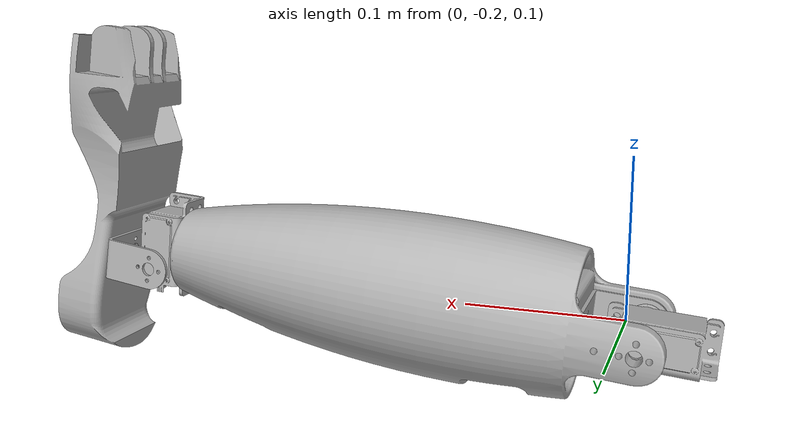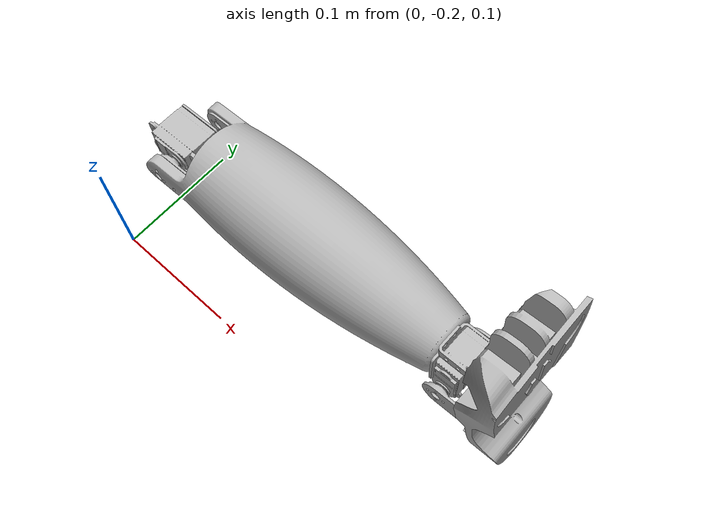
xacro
<?xml version="1.0" ?>
<robot name="right_leg" xmlns:xacro="http://www.ros.org/wiki/xacro">

<xacro:include filename="$(find right_leg_description)/urdf/materials.xacro" />
<xacro:include filename="$(find right_leg_description)/urdf/right_leg.trans" />
<xacro:include filename="$(find right_leg_description)/urdf/right_leg.gazebo" />
<link name="base_link">
  <inertial>
    <origin xyz="-0.026613185343482847 -0.11239707441235805 0.11736855909598289" rpy="0 0 0"/>
    <mass value="0.28416481806119953"/>
    <inertia ixx="4.7e-05" iyy="5.8e-05" izz="8e-05" ixy="0.0" iyz="0.0" ixz="-3e-06"/>
  </inertial>
  <visual>
    <origin xyz="0 0 0" rpy="0 0 0"/>
    <geometry>
      <mesh filename="package://right_leg_description/meshes/base_link.stl" scale="0.001 0.001 0.001"/>
    </geometry>
    <material name="silver"/>
  </visual>
  <collision>
    <origin xyz="0 0 0" rpy="0 0 0"/>
    <geometry>
      <mesh filename="package://right_leg_description/meshes/base_link.stl" scale="0.001 0.001 0.001"/>
    </geometry>
  </collision>
</link>

<link name="Motor20connector_2_v1_1">
  <inertial>
    <origin xyz="0.015476837617829989 0.01818299133297248 0.0013618106434749033" rpy="0 0 0"/>
    <mass value="0.018830430952545957"/>
    <inertia ixx="1.1e-05" iyy="4e-06" izz="1.3e-05" ixy="-1e-06" iyz="-0.0" ixz="-0.0"/>
  </inertial>
  <visual>
    <origin xyz="0.016724 0.133652 -0.119223" rpy="0 0 0"/>
    <geometry>
      <mesh filename="package://right_leg_description/meshes/Motor20connector_2_v1_1.stl" scale="0.001 0.001 0.001"/>
    </geometry>
    <material name="silver"/>
  </visual>
  <collision>
    <origin xyz="0.016724 0.133652 -0.119223" rpy="0 0 0"/>
    <geometry>
      <mesh filename="package://right_leg_description/meshes/Motor20connector_2_v1_1.stl" scale="0.001 0.001 0.001"/>
    </geometry>
  </collision>
</link>

<link name="right_calf_1">
  <inertial>
    <origin xyz="0.10084982426409403 -0.000165650126523198 0.01071139630879668" rpy="0 0 0"/>
    <mass value="0.3248619914332754"/>
    <inertia ixx="0.000429" iyy="0.002009" izz="0.002046" ixy="0.0" iyz="0.0" ixz="-0.000139"/>
  </inertial>
  <visual>
    <origin xyz="-0.01316 0.112152 -0.121853" rpy="0 0 0"/>
    <geometry>
      <mesh filename="package://right_leg_description/meshes/right_calf_1.stl" scale="0.001 0.001 0.001"/>
    </geometry>
    <material name="silver"/>
  </visual>
  <collision>
    <origin xyz="-0.01316 0.112152 -0.121853" rpy="0 0 0"/>
    <geometry>
      <mesh filename="package://right_leg_description/meshes/right_calf_1.stl" scale="0.001 0.001 0.001"/>
    </geometry>
  </collision>
</link>

<link name="motor20_1">
  <inertial>
    <origin xyz="0.012423491021603589 -0.004644740274027115 0.0011979376692399513" rpy="0 0 0"/>
    <mass value="0.28416484911493584"/>
    <inertia ixx="8e-05" iyy="5.8e-05" izz="4.7e-05" ixy="0.0" iyz="-0.0" ixz="3e-06"/>
  </inertial>
  <visual>
    <origin xyz="-0.24875 0.112333 -0.142583" rpy="0 0 0"/>
    <geometry>
      <mesh filename="package://right_leg_description/meshes/motor20_1.stl" scale="0.001 0.001 0.001"/>
    </geometry>
    <material name="silver"/>
  </visual>
  <collision>
    <origin xyz="-0.24875 0.112333 -0.142583" rpy="0 0 0"/>
    <geometry>
      <mesh filename="package://right_leg_description/meshes/motor20_1.stl" scale="0.001 0.001 0.001"/>
    </geometry>
  </collision>
</link>

<link name="motor20connector_1">
  <inertial>
    <origin xyz="0.015388140681599105 0.018183326385877677 0.002148946604458052" rpy="0 0 0"/>
    <mass value="0.01883043095246047"/>
    <inertia ixx="1.1e-05" iyy="4e-06" izz="1.3e-05" ixy="-1e-06" iyz="-0.0" ixz="-0.0"/>
  </inertial>
  <visual>
    <origin xyz="-0.263115 0.138233 -0.133909" rpy="0 0 0"/>
    <geometry>
      <mesh filename="package://right_leg_description/meshes/motor20connector_1.stl" scale="0.001 0.001 0.001"/>
    </geometry>
    <material name="silver"/>
  </visual>
  <collision>
    <origin xyz="-0.263115 0.138233 -0.133909" rpy="0 0 0"/>
    <geometry>
      <mesh filename="package://right_leg_description/meshes/motor20connector_1.stl" scale="0.001 0.001 0.001"/>
    </geometry>
  </collision>
</link>

<link name="foot_1">
  <inertial>
    <origin xyz="0.008678967050057163 -0.004139639795787534 0.022392751881793488" rpy="0 0 0"/>
    <mass value="0.1998240234035969"/>
    <inertia ixx="0.00076" iyy="0.0007" izz="0.000109" ixy="-7e-06" iyz="4.7e-05" ixz="7.8e-05"/>
  </inertial>
  <visual>
    <origin xyz="-0.291859 0.116733 -0.144991" rpy="0 0 0"/>
    <geometry>
      <mesh filename="package://right_leg_description/meshes/foot_1.stl" scale="0.001 0.001 0.001"/>
    </geometry>
    <material name="silver"/>
  </visual>
  <collision>
    <origin xyz="-0.291859 0.116733 -0.144991" rpy="0 0 0"/>
    <geometry>
      <mesh filename="package://right_leg_description/meshes/foot_1.stl" scale="0.001 0.001 0.001"/>
    </geometry>
  </collision>
</link>

<joint name="Revolute 3" type="continuous">
  <origin xyz="-0.016724 -0.133652 0.119223" rpy="0 0 0"/>
  <parent link="base_link"/>
  <child link="Motor20connector_2_v1_1"/>
  <axis xyz="0.0 -1.0 -0.0"/>
</joint>

<joint name="Rigid 4" type="fixed">
  <origin xyz="0.029884 0.0215 0.00263" rpy="0 0 0"/>
  <parent link="Motor20connector_2_v1_1"/>
  <child link="right_calf_1"/>
</joint>

<joint name="Rigid 5" type="fixed">
  <origin xyz="0.23559 -0.000181 0.02073" rpy="0 0 0"/>
  <parent link="right_calf_1"/>
  <child link="motor20_1"/>
</joint>

<joint name="Revolute 6" type="continuous">
  <origin xyz="0.014365 -0.0259 -0.008674" rpy="0 0 0"/>
  <parent link="motor20_1"/>
  <child link="motor20connector_1"/>
  <axis xyz="-0.0 -1.0 -0.0"/>
</joint>

<joint name="Rigid 8" type="fixed">
  <origin xyz="0.028744 0.0215 0.011082" rpy="0 0 0"/>
  <parent link="motor20connector_1"/>
  <child link="foot_1"/>
</joint>

</robot>

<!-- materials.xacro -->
<robot name="right_leg" xmlns:xacro="http://www.ros.org/wiki/xacro" >

<material name="silver">
  <color rgba="0.700 0.700 0.700 1.000"/>
</material>

</robot>

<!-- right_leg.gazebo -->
<robot name="right_leg" xmlns:xacro="http://www.ros.org/wiki/xacro" >

<xacro:property name="body_color" value="Gazebo/Silver" />

<gazebo>
  <plugin name="control" filename="libgazebo_ros_control.so"/>
</gazebo>
<gazebo reference="base_link">
  <material>${body_color}</material>
  <mu1>0.2</mu1>
  <mu2>0.2</mu2>
  <selfCollide>true</selfCollide>
  <gravity>true</gravity>
</gazebo>

<gazebo reference="Motor20connector_2_v1_1">
  <material>${body_color}</material>
  <mu1>0.2</mu1>
  <mu2>0.2</mu2>
  <selfCollide>true</selfCollide>
</gazebo>

<gazebo reference="right_calf_1">
  <material>${body_color}</material>
  <mu1>0.2</mu1>
  <mu2>0.2</mu2>
  <selfCollide>true</selfCollide>
</gazebo>

<gazebo reference="motor20_1">
  <material>${body_color}</material>
  <mu1>0.2</mu1>
  <mu2>0.2</mu2>
  <selfCollide>true</selfCollide>
</gazebo>

<gazebo reference="motor20connector_1">
  <material>${body_color}</material>
  <mu1>0.2</mu1>
  <mu2>0.2</mu2>
  <selfCollide>true</selfCollide>
</gazebo>

<gazebo reference="foot_1">
  <material>${body_color}</material>
  <mu1>0.2</mu1>
  <mu2>0.2</mu2>
  <selfCollide>true</selfCollide>
</gazebo>

</robot>
